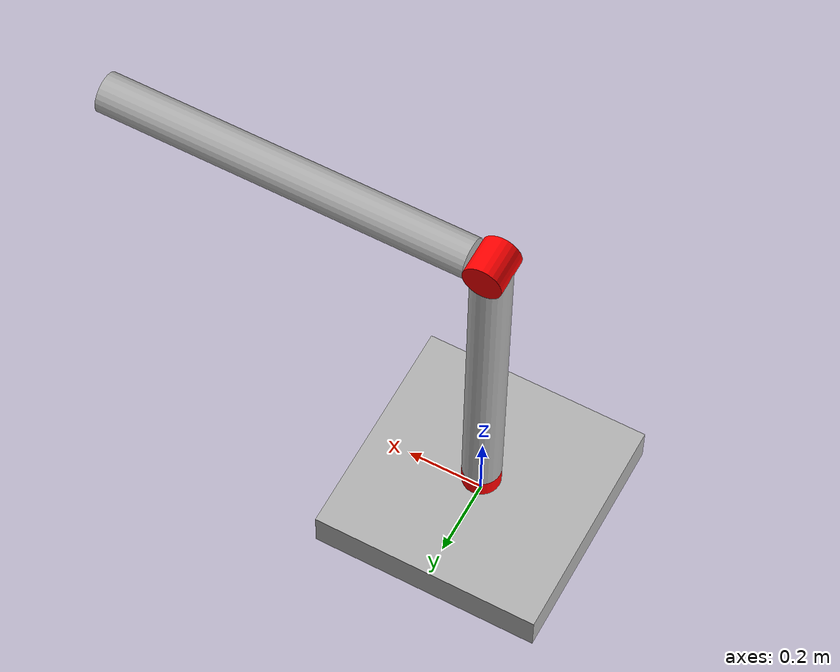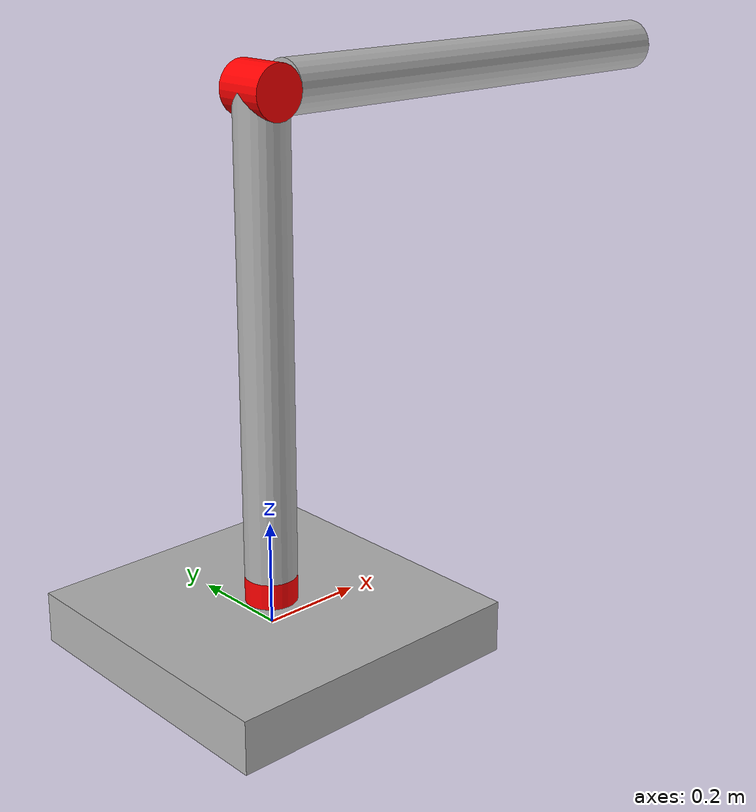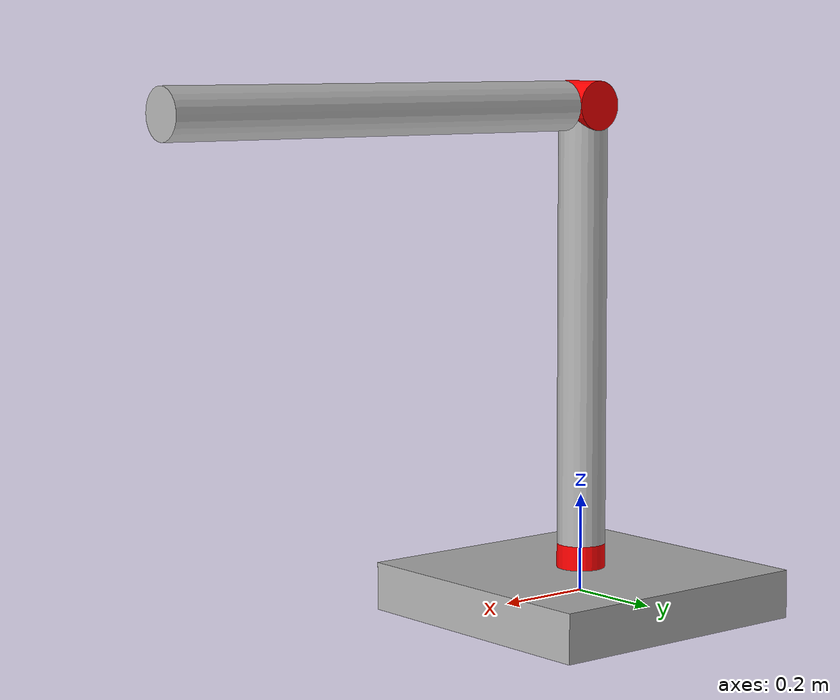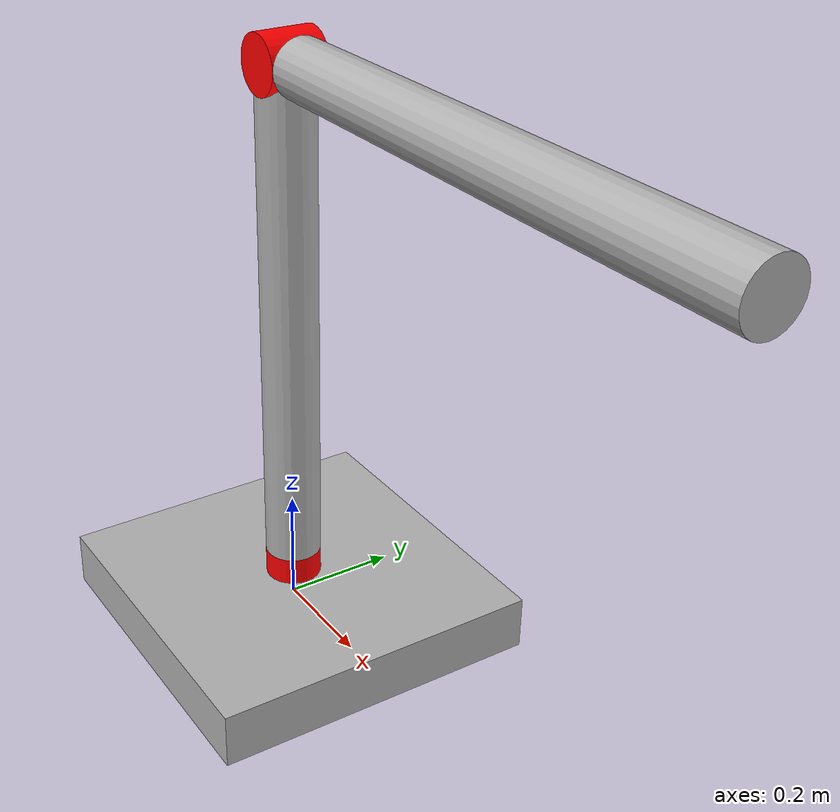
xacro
<?xml version="1.0"?>
<robot name="TWOLINK" xmlns:xacro="http://www.ros.org/wiki/xacro">
<xacro:property name="link_length_0_init" value="1"/>
<xacro:property name="link_length_1_init" value="1"/>

<xacro:property name="link_radius" value="0.05"/>
<xacro:property name="link_mass" value="0.5"/>
<xacro:property name="base_height" value="0.1"/>
<xacro:property name="base_side" value="0.6"/>
<xacro:property name="case_radius" value="${link_radius}"/>
<xacro:property name="case_length" value="${case_radius*2}"/>
<xacro:property name="ee_length" value="0.04"/>
<xacro:property name="ee_side" value="0.02"/>

<xacro:property name="ee_mass" value="30"/>

<xacro:property name="link_length_0" value="${link_length_0_init-case_length}"/>
<xacro:property name="link_length_1" value="${link_length_1_init-case_radius}"/>

  <link
    name="link_base">
    <inertial>
      <origin
        xyz="0 0 0"
        rpy="0 0 0" />
      <mass
        value="1e06" />
      <inertia
        ixx="1e06"
        ixy="0"
        ixz="0"
        iyy="1e06"
        iyz="0"
        izz="1e06" />
    </inertial>
    <visual>
      <origin
        xyz="0 0 0"
        rpy="0 0 0" />
      <geometry>
        <box size="${base_side} ${base_side} ${base_height}"/>
      </geometry>
      <material
        name="">
        <color
          rgba="0.7 0.7 0.7 1" />
      </material>
    </visual>
    <collision>
      <origin
        xyz="0 0 0"
        rpy="0 0 0" />
      <geometry>
        <box size="${base_side} ${base_side} ${base_height}"/>
      </geometry>
    </collision>
  </link>

<!-- ********Joint0******-->
  <joint
    name="joint_0"
    type="revolute">
    <origin
      xyz="0 0 ${base_height/2}"
      rpy="0 0 0" />
    <parent
      link="link_base" />
    <child
      link="casing_0" />
    <axis
      xyz="1 0 0" />
    <limit
      lower="-3.1415"
      upper="3.1415"
      effort="1e10"
      velocity="1e10" />
  </joint>
<!-- ********CASING0******-->
  <link
    name="casing_0">
    <inertial>
      <origin
        xyz="0 0 0"
        rpy="0 0 0" />
      <mass
        value="1e-03" />
      <inertia
        ixx="1e-03"
        ixy="0"
        ixz="0"
        iyy="1e-03"
        iyz="0"
        izz="1e-03" />
    </inertial>
    <visual>
      <origin
        xyz="0 0 0"
        rpy="0 0 0" />
      <geometry>
         <cylinder length="${case_length}" radius="${case_radius}"/>
      </geometry>
      <material
        name="">
        <color
          rgba="1 0 0 1" />
      </material>
    </visual>
    <collision>
      <origin
        xyz="0 0 0"
        rpy="0 0 0" />
      <geometry>
        <cylinder length="${case_length}" radius="${case_radius}"/>
      </geometry>
    </collision>
  </link>
  <gazebo reference="casing_0">
       <material>Gazebo/Red</material>
  </gazebo>
<!-- ********Fixed connection0******-->
  <joint
    name="fixed_joint_0"
    type="fixed">
    <origin
      xyz="0 0 ${case_length/2}"
      rpy="0 0 0" />
    <parent
      link="casing_0"/>
    <child
      link="link_0" />
    <axis
      xyz="1 0 0" />
    <limit
      lower="-3.1415"
      upper="3.1415"
      effort="1e10"
      velocity="1e10" />
  </joint>
<!-- ********LINK0******-->
  <link
    name="link_0">
    <inertial>
      <origin
        xyz="0 0 ${link_length_0/2}"
        rpy="0 0 0" />
      <mass
        value="${link_mass}" />
      <inertia
        ixx="1"
        ixy="0"
        ixz="0"
        iyy="1"
        iyz="0"
        izz="1" />
    </inertial>
    <visual>
      <origin
        xyz="0 0 ${link_length_0/2}"
        rpy="0 0 0" />
      <geometry>
        <cylinder length="${link_length_0}" radius="${link_radius}"/>
      </geometry>
      <material
        name="">
        <color
          rgba="0.7 0.7 0.7 1" />
      </material>
    </visual>
    <collision>
      <origin
        xyz="0 0 ${link_length_0/2}"
        rpy="0 0 0" />
      <geometry>
        <cylinder length="${link_length_0}" radius="${link_radius}"/>
      </geometry>
    </collision>
  </link>
<!-- ********Joint1******-->
  <joint
    name="joint_1"
    type="revolute">
    <origin
      xyz="0 0 ${link_length_0}"
      rpy="1.5708 0 0" />
    <parent
      link="link_0"/>
    <child
      link="casing_1" />
    <axis
      xyz="0 0 1" />
    <limit
      lower="-3.1415"
      upper="3.1415"
      effort="1e10"
      velocity="1e10" />
  </joint>
<!-- ********CASING1******-->
  <link
    name="casing_1">
    <inertial>
      <origin
        xyz="0 0 0"
        rpy="0 0 0" />
      <mass
        value="1e-03" />
      <inertia
        ixx="1e-03"
        ixy="0"
        ixz="0"
        iyy="1e-03"
        iyz="0"
        izz="1e-03" />
    </inertial>
    <visual>
      <origin
        xyz="0 0 0"
        rpy="0 0 0" />
      <geometry>
         <cylinder length="${case_length}" radius="${case_radius}"/>
      </geometry>
      <material
        name="">
        <color
          rgba="1 0 0 1" />
      </material>
    </visual>
    <collision>
      <origin
        xyz="0 0 0"
        rpy="0 0 0" />
      <geometry>
        <cylinder length="${case_length}" radius="${case_radius}"/>
      </geometry>
    </collision>
  </link>
  <gazebo reference="casing_1">
       <material>Gazebo/Red</material>
  </gazebo>
<!-- ********Fixed connection1******-->
  <joint
    name="fixed_joint_1"
    type="fixed">
    <origin
      xyz="${case_radius} 0 0"
      rpy="0 0 0" />
    <parent
      link="casing_1"/>
    <child
      link="link_1" />
    <axis
      xyz="0 0 1" />
    <limit
      lower="-3.1415"
      upper="3.1415"
      effort="1e10"
      velocity="1e10" />
  </joint>
<!-- ********LINK1******-->
  <link
    name="link_1">
    <inertial>
      <origin
        xyz="${link_length_1/2} 0 0"
        rpy="0 1.5708 0" />
      <mass
        value="${link_mass}" />
      <inertia
        ixx="1"
        ixy="0"
        ixz="0"
        iyy="1"
        iyz="0"
        izz="1" />
    </inertial>
    <visual>
      <origin
        xyz="${link_length_1/2} 0 0"
        rpy="0 1.5708 0" />
      <geometry>
        <cylinder length="${link_length_1}" radius="${link_radius}"/>
      </geometry>
      <material
        name="">
        <color
          rgba="0.7 0.7 0.7 1" />
      </material>
    </visual>
    <collision>
      <origin
        xyz="${link_length_1/2} 0 0"
        rpy="0 1.5708 0" />
      <geometry>
        <cylinder length="${link_length_1}" radius="${link_radius}"/>
      </geometry>
    </collision>
  </link>
<!-- *********************TRANSMISSIONS********************************* -->
<!-- **** Trans 0***** -->
<transmission name="trans_joint_0">
  <type>transmission_interface/SimpleTransmission</type>
  <joint name="joint_0">
    <hardwareInterface>EffortJointInterface</hardwareInterface>
  </joint>
  <actuator name="motor_joint_0">
    <mechanicalReduction>1</mechanicalReduction>
    <hardwareInterface>EffortJointInterface</hardwareInterface>
  </actuator>
</transmission>
<!-- **** Trans 1***** -->
<transmission name="trans_joint_1">
  <type>transmission_interface/SimpleTransmission</type>
  <joint name="joint_1">
    <hardwareInterface>EffortJointInterface</hardwareInterface>
  </joint>
  <actuator name="motor_joint_1">
    <mechanicalReduction>1</mechanicalReduction>
    <hardwareInterface>EffortJointInterface</hardwareInterface>
  </actuator>
</transmission>
<!-- **** GAZEBO ROS PLUGIN***** -->
<gazebo>
  <plugin name="gazebo_ros_control" filename="libgazebo_ros_control.so">
    <robotNamespace>/TWOLINK</robotNamespace>
  </plugin>
</gazebo>
</robot>
